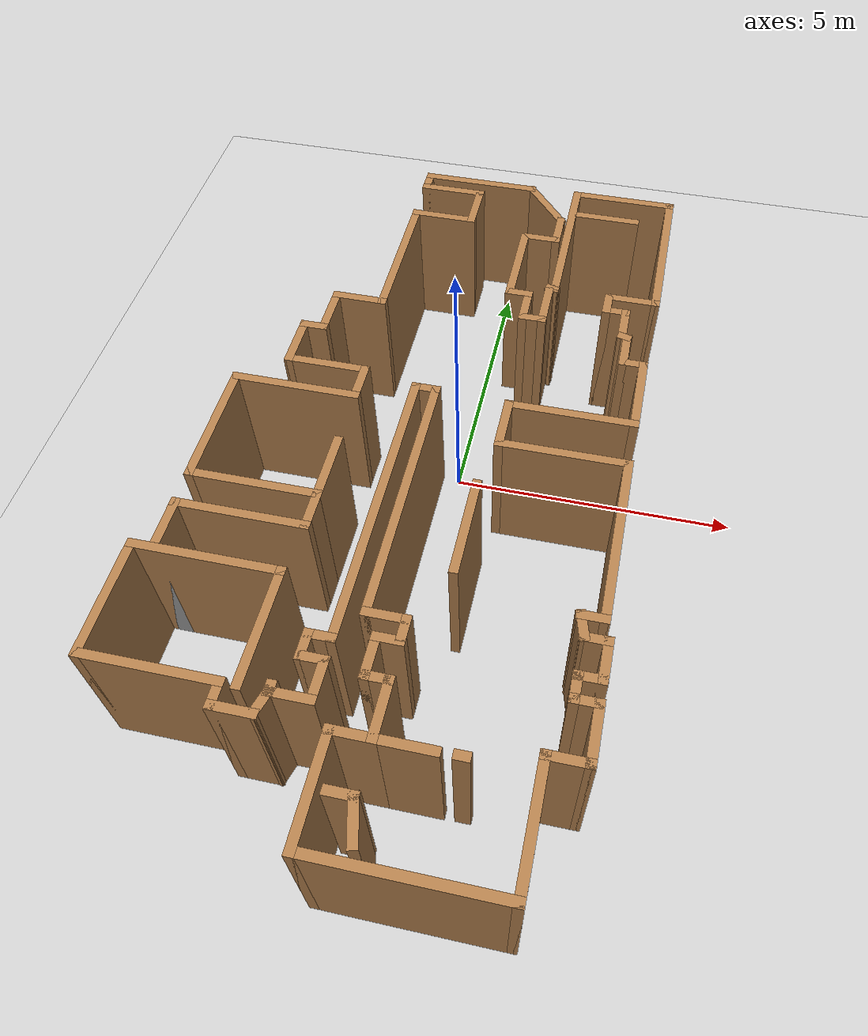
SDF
<sdf version="1.6">
 <world name="default">
  <model name="ground_plane">
   <static>1</static>
   <link name="link">
    <collision name="collision">
     <geometry><plane><normal>0 0 1</normal><size>100 100</size></plane></geometry>
     <surface>
      <contact><collide_bitmask>65535</collide_bitmask></contact>
      <friction><ode><mu>100</mu><mu2>50</mu2></ode></friction>
     </surface>
    </collision>
    <visual name="visual">
     <cast_shadows>0</cast_shadows>
     <geometry><plane><normal>0 0 1</normal><size>100 100</size></plane></geometry>
     <material>
      <script><uri>file://media/materials/scripts/gazebo.material</uri><name>Gazebo/Grey</name></script>
     </material>
    </visual>
   </link>
  </model>
  <model name="map_42">
   <pose>-0.527836 -1.00135 0 0 -0 0</pose>
   <link name="Wall_0">
    <collision name="Wall_0_Collision">
     <geometry><box><size>2.25 0.15 2.5</size></box></geometry>
     <pose>0 0 1.25 0 -0 0</pose>
    </collision>
    <visual name="Wall_0_Visual">
     <pose>0 0 1.25 0 -0 0</pose>
     <geometry><box><size>2.25 0.15 2.5</size></box></geometry>
     <material>
      <script><uri>file://media/materials/scripts/gazebo.material</uri><name>Gazebo/Wood</name></script>
      <ambient>1 1 1 1</ambient>
     </material>
     <meta><layer>0</layer></meta>
    </visual>
    <pose>-0.25 6.70969 0 0 -0 3.14159</pose>
   </link>
   <link name="Wall_1">
    <collision name="Wall_1_Collision">
     <geometry><box><size>0.5 0.15 2.5</size></box></geometry>
     <pose>0 0 1.25 0 -0 0</pose>
    </collision>
    <visual name="Wall_1_Visual">
     <pose>0 0 1.25 0 -0 0</pose>
     <geometry><box><size>0.5 0.15 2.5</size></box></geometry>
     <material>
      <script><uri>file://media/materials/scripts/gazebo.material</uri><name>Gazebo/Wood</name></script>
      <ambient>1 1 1 1</ambient>
     </material>
     <meta><layer>0</layer></meta>
    </visual>
    <pose>-1.3 6.53469 0 0 -0 -1.5708</pose>
   </link>
   <link name="Wall_10">
    <collision name="Wall_10_Collision">
     <geometry><box><size>0.5 0.15 2.5</size></box></geometry>
     <pose>0 0 1.25 0 -0 0</pose>
    </collision>
    <visual name="Wall_10_Visual">
     <pose>0 0 1.25 0 -0 0</pose>
     <geometry><box><size>0.5 0.15 2.5</size></box></geometry>
     <material>
      <script><uri>file://media/materials/scripts/gazebo.material</uri><name>Gazebo/Wood</name></script>
      <ambient>1 1 1 1</ambient>
     </material>
     <meta><layer>0</layer></meta>
    </visual>
    <pose>-2.325 2.05969 0 0 -0 3.14159</pose>
   </link>
   <link name="Wall_100">
    <collision name="Wall_100_Collision">
     <geometry><box><size>0.75 0.15 2.5</size></box></geometry>
     <pose>0 0 1.25 0 -0 0</pose>
    </collision>
    <visual name="Wall_100_Visual">
     <pose>0 0 1.25 0 -0 0</pose>
     <geometry><box><size>0.75 0.15 2.5</size></box></geometry>
     <material>
      <script><uri>file://media/materials/scripts/gazebo.material</uri><name>Gazebo/Wood</name></script>
      <ambient>1 1 1 1</ambient>
     </material>
     <meta><layer>0</layer></meta>
    </visual>
    <pose>1.26623 3.34952 0 0 -0 1.5708</pose>
   </link>
   <link name="Wall_101">
    <collision name="Wall_101_Collision">
     <geometry><box><size>0.5 0.15 2.5</size></box></geometry>
     <pose>0 0 1.25 0 -0 0</pose>
    </collision>
    <visual name="Wall_101_Visual">
     <pose>0 0 1.25 0 -0 0</pose>
     <geometry><box><size>0.5 0.15 2.5</size></box></geometry>
     <material>
      <script><uri>file://media/materials/scripts/gazebo.material</uri><name>Gazebo/Wood</name></script>
      <ambient>1 1 1 1</ambient>
     </material>
     <meta><layer>0</layer></meta>
    </visual>
    <pose>1.09123 3.64952 0 0 -0 3.14159</pose>
   </link>
   <link name="Wall_102">
    <collision name="Wall_102_Collision">
     <geometry><box><size>1.75 0.15 2.5</size></box></geometry>
     <pose>0 0 1.25 0 -0 0</pose>
    </collision>
    <visual name="Wall_102_Visual">
     <pose>0 0 1.25 0 -0 0</pose>
     <geometry><box><size>1.75 0.15 2.5</size></box></geometry>
     <material>
      <script><uri>file://media/materials/scripts/gazebo.material</uri><name>Gazebo/Wood</name></script>
      <ambient>1 1 1 1</ambient>
     </material>
     <meta><layer>0</layer></meta>
    </visual>
    <pose>0.916228 4.44953 0 0 -0 1.5708</pose>
   </link>
   <link name="Wall_105">
    <collision name="Wall_105_Collision">
     <geometry><box><size>0.75 0.15 2.5</size></box></geometry>
     <pose>0 0 1.25 0 -0 0</pose>
    </collision>
    <visual name="Wall_105_Visual">
     <pose>0 0 1.25 0 -0 0</pose>
     <geometry><box><size>0.75 0.15 2.5</size></box></geometry>
     <material>
      <script><uri>file://media/materials/scripts/gazebo.material</uri><name>Gazebo/Wood</name></script>
      <ambient>1 1 1 1</ambient>
     </material>
     <meta><layer>0</layer></meta>
    </visual>
    <pose>1.21623 5.24953 0 0 -0 0</pose>
   </link>
   <link name="Wall_106">
    <collision name="Wall_106_Collision">
     <geometry><box><size>0.75 0.15 2.5</size></box></geometry>
     <pose>0 0 1.25 0 -0 0</pose>
    </collision>
    <visual name="Wall_106_Visual">
     <pose>0 0 1.25 0 -0 0</pose>
     <geometry><box><size>0.75 0.15 2.5</size></box></geometry>
     <material>
      <script><uri>file://media/materials/scripts/gazebo.material</uri><name>Gazebo/Wood</name></script>
      <ambient>1 1 1 1</ambient>
     </material>
     <meta><layer>0</layer></meta>
    </visual>
    <pose>1.51623 5.54953 0 0 -0 1.5708</pose>
   </link>
   <link name="Wall_107">
    <collision name="Wall_107_Collision">
     <geometry><box><size>1.26931 0.15 2.5</size></box></geometry>
     <pose>0 0 1.25 0 -0 0</pose>
    </collision>
    <visual name="Wall_107_Visual">
     <pose>0 0 1.25 0 -0 0</pose>
     <geometry><box><size>1.26931 0.15 2.5</size></box></geometry>
     <material>
      <script><uri>file://media/materials/scripts/gazebo.material</uri><name>Gazebo/Wood</name></script>
      <ambient>1 1 1 1</ambient>
     </material>
     <meta><layer>0</layer></meta>
    </visual>
    <pose>1.15811 6.27961 0 0 -0 2.26514</pose>
   </link>
   <link name="Wall_109">
    <collision name="Wall_109_Collision">
     <geometry><box><size>1.25 0.15 2.5</size></box></geometry>
     <pose>0 0 1.25 0 -0 0</pose>
    </collision>
    <visual name="Wall_109_Visual">
     <pose>0 0 1.25 0 -0 0</pose>
     <geometry><box><size>1.25 0.15 2.5</size></box></geometry>
     <material>
      <script><uri>file://media/materials/scripts/gazebo.material</uri><name>Gazebo/Wood</name></script>
      <ambient>1 1 1 1</ambient>
     </material>
     <meta><layer>0</layer></meta>
    </visual>
    <pose>2.39007 6.09788 0 0 -0 0</pose>
   </link>
   <link name="Wall_11">
    <collision name="Wall_11_Collision">
     <geometry><box><size>1 0.15 2.5</size></box></geometry>
     <pose>0 0 1.25 0 -0 0</pose>
    </collision>
    <visual name="Wall_11_Visual">
     <pose>0 0 1.25 0 -0 0</pose>
     <geometry><box><size>1 0.15 2.5</size></box></geometry>
     <material>
      <script><uri>file://media/materials/scripts/gazebo.material</uri><name>Gazebo/Wood</name></script>
      <ambient>1 1 1 1</ambient>
     </material>
     <meta><layer>0</layer></meta>
    </visual>
    <pose>-2.5 1.63469 0 0 -0 -1.5708</pose>
   </link>
   <link name="Wall_111">
    <collision name="Wall_111_Collision">
     <geometry><box><size>1.75 0.15 2.5</size></box></geometry>
     <pose>0 0 1.25 0 -0 0</pose>
    </collision>
    <visual name="Wall_111_Visual">
     <pose>0 0 1.25 0 -0 0</pose>
     <geometry><box><size>1.75 0.15 2.5</size></box></geometry>
     <material>
      <script><uri>file://media/materials/scripts/gazebo.material</uri><name>Gazebo/Wood</name></script>
      <ambient>1 1 1 1</ambient>
     </material>
     <meta><layer>0</layer></meta>
    </visual>
    <pose>1.22826 -1.58492 0 0 -0 -1.5708</pose>
   </link>
   <link name="Wall_113">
    <collision name="Wall_113_Collision">
     <geometry><box><size>2.5 0.15 2.5</size></box></geometry>
     <pose>0 0 1.25 0 -0 0</pose>
    </collision>
    <visual name="Wall_113_Visual">
     <pose>0 0 1.25 0 -0 0</pose>
     <geometry><box><size>2.5 0.15 2.5</size></box></geometry>
     <material>
      <script><uri>file://media/materials/scripts/gazebo.material</uri><name>Gazebo/Wood</name></script>
      <ambient>1 1 1 1</ambient>
     </material>
     <meta><layer>0</layer></meta>
    </visual>
    <pose>-2.425 -2.94031 0 0 -0 0</pose>
   </link>
   <link name="Wall_114">
    <collision name="Wall_114_Collision">
     <geometry><box><size>2 0.15 2.5</size></box></geometry>
     <pose>0 0 1.25 0 -0 0</pose>
    </collision>
    <visual name="Wall_114_Visual">
     <pose>0 0 1.25 0 -0 0</pose>
     <geometry><box><size>2 0.15 2.5</size></box></geometry>
     <material>
      <script><uri>file://media/materials/scripts/gazebo.material</uri><name>Gazebo/Wood</name></script>
      <ambient>1 1 1 1</ambient>
     </material>
     <meta><layer>0</layer></meta>
    </visual>
    <pose>-1.25 -3.86531 0 0 -0 -1.5708</pose>
   </link>
   <link name="Wall_116">
    <collision name="Wall_116_Collision">
     <geometry><box><size>0.25 0.15 2.5</size></box></geometry>
     <pose>0 0 1.25 0 -0 0</pose>
    </collision>
    <visual name="Wall_116_Visual">
     <pose>0 0 1.25 0 -0 0</pose>
     <geometry><box><size>0.25 0.15 2.5</size></box></geometry>
     <material>
      <script><uri>file://media/materials/scripts/gazebo.material</uri><name>Gazebo/Wood</name></script>
      <ambient>1 1 1 1</ambient>
     </material>
     <meta><layer>0</layer></meta>
    </visual>
    <pose>1.95125 -5.12873 0 0 -0 0</pose>
   </link>
   <link name="Wall_118">
    <collision name="Wall_118_Collision">
     <geometry><box><size>0.5 0.15 2.5</size></box></geometry>
     <pose>0 0 1.25 0 -0 0</pose>
    </collision>
    <visual name="Wall_118_Visual">
     <pose>0 0 1.25 0 -0 0</pose>
     <geometry><box><size>0.5 0.15 2.5</size></box></geometry>
     <material>
      <script><uri>file://media/materials/scripts/gazebo.material</uri><name>Gazebo/Wood</name></script>
      <ambient>1 1 1 1</ambient>
     </material>
     <meta><layer>0</layer></meta>
    </visual>
    <pose>0.546737 -5.92408 0 0 -0 0</pose>
   </link>
   <link name="Wall_119">
    <collision name="Wall_119_Collision">
     <geometry><box><size>0.75 0.15 2.5</size></box></geometry>
     <pose>0 0 1.25 0 -0 0</pose>
    </collision>
    <visual name="Wall_119_Visual">
     <pose>0 0 1.25 0 -0 0</pose>
     <geometry><box><size>0.75 0.15 2.5</size></box></geometry>
     <material>
      <script><uri>file://media/materials/scripts/gazebo.material</uri><name>Gazebo/Wood</name></script>
      <ambient>1 1 1 1</ambient>
     </material>
     <meta><layer>0</layer></meta>
    </visual>
    <pose>0.799383 -6.21386 0 0 -0 -1.309</pose>
   </link>
   <link name="Wall_14">
    <collision name="Wall_14_Collision">
     <geometry><box><size>1.5 0.15 2.5</size></box></geometry>
     <pose>0 0 1.25 0 -0 0</pose>
    </collision>
    <visual name="Wall_14_Visual">
     <pose>0 0 1.25 0 -0 0</pose>
     <geometry><box><size>1.5 0.15 2.5</size></box></geometry>
     <material>
      <script><uri>file://media/materials/scripts/gazebo.material</uri><name>Gazebo/Wood</name></script>
      <ambient>1 1 1 1</ambient>
     </material>
     <meta><layer>0</layer></meta>
    </visual>
    <pose>-1.825 1.20969 0 0 -0 0</pose>
   </link>
   <link name="Wall_15">
    <collision name="Wall_15_Collision">
     <geometry><box><size>0.75 0.15 2.5</size></box></geometry>
     <pose>0 0 1.25 0 -0 0</pose>
    </collision>
    <visual name="Wall_15_Visual">
     <pose>0 0 1.25 0 -0 0</pose>
     <geometry><box><size>0.75 0.15 2.5</size></box></geometry>
     <material>
      <script><uri>file://media/materials/scripts/gazebo.material</uri><name>Gazebo/Wood</name></script>
      <ambient>1 1 1 1</ambient>
     </material>
     <meta><layer>0</layer></meta>
    </visual>
    <pose>-1.15 0.909687 0 0 -0 -1.5708</pose>
   </link>
   <link name="Wall_16">
    <collision name="Wall_16_Collision">
     <geometry><box><size>2.25 0.15 2.5</size></box></geometry>
     <pose>0 0 1.25 0 -0 0</pose>
    </collision>
    <visual name="Wall_16_Visual">
     <pose>0 0 1.25 0 -0 0</pose>
     <geometry><box><size>2.25 0.15 2.5</size></box></geometry>
     <material>
      <script><uri>file://media/materials/scripts/gazebo.material</uri><name>Gazebo/Wood</name></script>
      <ambient>1 1 1 1</ambient>
     </material>
     <meta><layer>0</layer></meta>
    </visual>
    <pose>-2.2 0.609687 0 0 -0 3.14159</pose>
   </link>
   <link name="Wall_17">
    <collision name="Wall_17_Collision">
     <geometry><box><size>2.25 0.15 2.5</size></box></geometry>
     <pose>0 0 1.25 0 -0 0</pose>
    </collision>
    <visual name="Wall_17_Visual">
     <pose>0 0 1.25 0 -0 0</pose>
     <geometry><box><size>2.25 0.15 2.5</size></box></geometry>
     <material>
      <script><uri>file://media/materials/scripts/gazebo.material</uri><name>Gazebo/Wood</name></script>
      <ambient>1 1 1 1</ambient>
     </material>
     <meta><layer>0</layer></meta>
    </visual>
    <pose>-3.25 -0.440313 0 0 -0 -1.5708</pose>
   </link>
   <link name="Wall_18">
    <collision name="Wall_18_Collision">
     <geometry><box><size>2.25 0.15 2.5</size></box></geometry>
     <pose>0 0 1.25 0 -0 0</pose>
    </collision>
    <visual name="Wall_18_Visual">
     <pose>0 0 1.25 0 -0 0</pose>
     <geometry><box><size>2.25 0.15 2.5</size></box></geometry>
     <material>
      <script><uri>file://media/materials/scripts/gazebo.material</uri><name>Gazebo/Wood</name></script>
      <ambient>1 1 1 1</ambient>
     </material>
     <meta><layer>0</layer></meta>
    </visual>
    <pose>-2.2 -1.49031 0 0 -0 0</pose>
   </link>
   <link name="Wall_19">
    <collision name="Wall_19_Collision">
     <geometry><box><size>1.25 0.15 2.5</size></box></geometry>
     <pose>0 0 1.25 0 -0 0</pose>
    </collision>
    <visual name="Wall_19_Visual">
     <pose>0 0 1.25 0 -0 0</pose>
     <geometry><box><size>1.25 0.15 2.5</size></box></geometry>
     <material>
      <script><uri>file://media/materials/scripts/gazebo.material</uri><name>Gazebo/Wood</name></script>
      <ambient>1 1 1 1</ambient>
     </material>
     <meta><layer>0</layer></meta>
    </visual>
    <pose>-1.15 -0.940313 0 0 -0 1.5708</pose>
   </link>
   <link name="Wall_21">
    <collision name="Wall_21_Collision">
     <geometry><box><size>0.75 0.15 2.5</size></box></geometry>
     <pose>0 0 1.25 0 -0 0</pose>
    </collision>
    <visual name="Wall_21_Visual">
     <pose>0 0 1.25 0 -0 0</pose>
     <geometry><box><size>0.75 0.15 2.5</size></box></geometry>
     <material>
      <script><uri>file://media/materials/scripts/gazebo.material</uri><name>Gazebo/Wood</name></script>
      <ambient>1 1 1 1</ambient>
     </material>
     <meta><layer>0</layer></meta>
    </visual>
    <pose>-1.15 -1.79031 0 0 -0 -1.5708</pose>
   </link>
   <link name="Wall_22">
    <collision name="Wall_22_Collision">
     <geometry><box><size>2.25 0.15 2.5</size></box></geometry>
     <pose>0 0 1.25 0 -0 0</pose>
    </collision>
    <visual name="Wall_22_Visual">
     <pose>0 0 1.25 0 -0 0</pose>
     <geometry><box><size>2.25 0.15 2.5</size></box></geometry>
     <material>
      <script><uri>file://media/materials/scripts/gazebo.material</uri><name>Gazebo/Wood</name></script>
      <ambient>1 1 1 1</ambient>
     </material>
     <meta><layer>0</layer></meta>
    </visual>
    <pose>-2.2 -2.09031 0 0 -0 3.14159</pose>
   </link>
   <link name="Wall_23">
    <collision name="Wall_23_Collision">
     <geometry><box><size>1 0.15 2.5</size></box></geometry>
     <pose>0 0 1.25 0 -0 0</pose>
    </collision>
    <visual name="Wall_23_Visual">
     <pose>0 0 1.25 0 -0 0</pose>
     <geometry><box><size>1 0.15 2.5</size></box></geometry>
     <material>
      <script><uri>file://media/materials/scripts/gazebo.material</uri><name>Gazebo/Wood</name></script>
      <ambient>1 1 1 1</ambient>
     </material>
     <meta><layer>0</layer></meta>
    </visual>
    <pose>-3.25 -2.51531 0 0 -0 -1.5708</pose>
   </link>
   <link name="Wall_33">
    <collision name="Wall_33_Collision">
     <geometry><box><size>0.25 0.15 2.5</size></box></geometry>
     <pose>0 0 1.25 0 -0 0</pose>
    </collision>
    <visual name="Wall_33_Visual">
     <pose>0 0 1.25 0 -0 0</pose>
     <geometry><box><size>0.25 0.15 2.5</size></box></geometry>
     <material>
      <script><uri>file://media/materials/scripts/gazebo.material</uri><name>Gazebo/Wood</name></script>
      <ambient>1 1 1 1</ambient>
     </material>
     <meta><layer>0</layer></meta>
    </visual>
    <pose>-0.8 -4.74031 0 0 -0 1.5708</pose>
   </link>
   <link name="Wall_35">
    <collision name="Wall_35_Collision">
     <geometry><box><size>0.5 0.15 2.5</size></box></geometry>
     <pose>0 0 1.25 0 -0 0</pose>
    </collision>
    <visual name="Wall_35_Visual">
     <pose>0 0 1.25 0 -0 0</pose>
     <geometry><box><size>0.5 0.15 2.5</size></box></geometry>
     <material>
      <script><uri>file://media/materials/scripts/gazebo.material</uri><name>Gazebo/Grey</name></script>
      <ambient>1 1 1 1</ambient>
     </material>
     <meta><layer>0</layer></meta>
    </visual>
    <pose>-3.425 -2.94031 0 0 -0 3.14159</pose>
   </link>
   <link name="Wall_36">
    <collision name="Wall_36_Collision">
     <geometry><box><size>2 0.15 2.5</size></box></geometry>
     <pose>0 0 1.25 0 -0 0</pose>
    </collision>
    <visual name="Wall_36_Visual">
     <pose>0 0 1.25 0 -0 0</pose>
     <geometry><box><size>2 0.15 2.5</size></box></geometry>
     <material>
      <script><uri>file://media/materials/scripts/gazebo.material</uri><name>Gazebo/Wood</name></script>
      <ambient>1 1 1 1</ambient>
     </material>
     <meta><layer>0</layer></meta>
    </visual>
    <pose>-3.6 -3.86531 0 0 -0 -1.5708</pose>
   </link>
   <link name="Wall_37">
    <collision name="Wall_37_Collision">
     <geometry><box><size>2.25 0.15 2.5</size></box></geometry>
     <pose>0 0 1.25 0 -0 0</pose>
    </collision>
    <visual name="Wall_37_Visual">
     <pose>0 0 1.25 0 -0 0</pose>
     <geometry><box><size>2.25 0.15 2.5</size></box></geometry>
     <material>
      <script><uri>file://media/materials/scripts/gazebo.material</uri><name>Gazebo/Wood</name></script>
      <ambient>1 1 1 1</ambient>
     </material>
     <meta><layer>0</layer></meta>
    </visual>
    <pose>-2.55 -4.79031 0 0 -0 0</pose>
   </link>
   <link name="Wall_38">
    <collision name="Wall_38_Collision">
     <geometry><box><size>0.5 0.15 2.5</size></box></geometry>
     <pose>0 0 1.25 0 -0 0</pose>
    </collision>
    <visual name="Wall_38_Visual">
     <pose>0 0 1.25 0 -0 0</pose>
     <geometry><box><size>0.5 0.15 2.5</size></box></geometry>
     <material>
      <script><uri>file://media/materials/scripts/gazebo.material</uri><name>Gazebo/Wood</name></script>
      <ambient>1 1 1 1</ambient>
     </material>
     <meta><layer>0</layer></meta>
    </visual>
    <pose>-1.5 -4.96531 0 0 -0 -1.5708</pose>
   </link>
   <link name="Wall_39">
    <collision name="Wall_39_Collision">
     <geometry><box><size>0.75 0.15 2.5</size></box></geometry>
     <pose>0 0 1.25 0 -0 0</pose>
    </collision>
    <visual name="Wall_39_Visual">
     <pose>0 0 1.25 0 -0 0</pose>
     <geometry><box><size>0.75 0.15 2.5</size></box></geometry>
     <material>
      <script><uri>file://media/materials/scripts/gazebo.material</uri><name>Gazebo/Wood</name></script>
      <ambient>1 1 1 1</ambient>
     </material>
     <meta><layer>0</layer></meta>
    </visual>
    <pose>-1.2 -5.14031 0 0 -0 0</pose>
   </link>
   <link name="Wall_4">
    <collision name="Wall_4_Collision">
     <geometry><box><size>1.25 0.15 2.5</size></box></geometry>
     <pose>0 0 1.25 0 -0 0</pose>
    </collision>
    <visual name="Wall_4_Visual">
     <pose>0 0 1.25 0 -0 0</pose>
     <geometry><box><size>1.25 0.15 2.5</size></box></geometry>
     <material>
      <script><uri>file://media/materials/scripts/gazebo.material</uri><name>Gazebo/Wood</name></script>
      <ambient>1 1 1 1</ambient>
     </material>
     <meta><layer>0</layer></meta>
    </visual>
    <pose>-0.75 6.35969 0 0 -0 0</pose>
   </link>
   <link name="Wall_42">
    <collision name="Wall_42_Collision">
     <geometry><box><size>0.514005 0.15 2.5</size></box></geometry>
     <pose>0 0 1.25 0 -0 0</pose>
    </collision>
    <visual name="Wall_42_Visual">
     <pose>0 0 1.25 0 -0 0</pose>
     <geometry><box><size>0.514005 0.15 2.5</size></box></geometry>
     <material>
      <script><uri>file://media/materials/scripts/gazebo.material</uri><name>Gazebo/Wood</name></script>
      <ambient>1 1 1 1</ambient>
     </material>
     <meta><layer>0</layer></meta>
    </visual>
    <pose>-0.85 -4.96531 0 0 -0 1.2925</pose>
   </link>
   <link name="Wall_43">
    <collision name="Wall_43_Collision">
     <geometry><box><size>0.75 0.15 2.5</size></box></geometry>
     <pose>0 0 1.25 0 -0 0</pose>
    </collision>
    <visual name="Wall_43_Visual">
     <pose>0 0 1.25 0 -0 0</pose>
     <geometry><box><size>0.75 0.15 2.5</size></box></geometry>
     <material>
      <script><uri>file://media/materials/scripts/gazebo.material</uri><name>Gazebo/Wood</name></script>
      <ambient>1 1 1 1</ambient>
     </material>
     <meta><layer>0</layer></meta>
    </visual>
    <pose>-0.5 -4.79031 0 0 -0 0</pose>
   </link>
   <link name="Wall_46">
    <collision name="Wall_46_Collision">
     <geometry><box><size>0.75 0.15 2.5</size></box></geometry>
     <pose>0 0 1.25 0 -0 0</pose>
    </collision>
    <visual name="Wall_46_Visual">
     <pose>0 0 1.25 0 -0 0</pose>
     <geometry><box><size>0.75 0.15 2.5</size></box></geometry>
     <material>
      <script><uri>file://media/materials/scripts/gazebo.material</uri><name>Gazebo/Wood</name></script>
      <ambient>1 1 1 1</ambient>
     </material>
     <meta><layer>0</layer></meta>
    </visual>
    <pose>-0.2 -4.49031 0 0 -0 1.5708</pose>
   </link>
   <link name="Wall_47">
    <collision name="Wall_47_Collision">
     <geometry><box><size>0.5 0.15 2.5</size></box></geometry>
     <pose>0 0 1.25 0 -0 0</pose>
    </collision>
    <visual name="Wall_47_Visual">
     <pose>0 0 1.25 0 -0 0</pose>
     <geometry><box><size>0.5 0.15 2.5</size></box></geometry>
     <material>
      <script><uri>file://media/materials/scripts/gazebo.material</uri><name>Gazebo/Wood</name></script>
      <ambient>1 1 1 1</ambient>
     </material>
     <meta><layer>0</layer></meta>
    </visual>
    <pose>-0.375 -4.19031 0 0 -0 3.14159</pose>
   </link>
   <link name="Wall_48">
    <collision name="Wall_48_Collision">
     <geometry><box><size>0.5 0.15 2.5</size></box></geometry>
     <pose>0 0 1.25 0 -0 0</pose>
    </collision>
    <visual name="Wall_48_Visual">
     <pose>0 0 1.25 0 -0 0</pose>
     <geometry><box><size>0.5 0.15 2.5</size></box></geometry>
     <material>
      <script><uri>file://media/materials/scripts/gazebo.material</uri><name>Gazebo/Wood</name></script>
      <ambient>1 1 1 1</ambient>
     </material>
     <meta><layer>0</layer></meta>
    </visual>
    <pose>-0.55 -4.01531 0 0 -0 1.5708</pose>
   </link>
   <link name="Wall_49">
    <collision name="Wall_49_Collision">
     <geometry><box><size>0.5 0.15 2.5</size></box></geometry>
     <pose>0 0 1.25 0 -0 0</pose>
    </collision>
    <visual name="Wall_49_Visual">
     <pose>0 0 1.25 0 -0 0</pose>
     <geometry><box><size>0.5 0.15 2.5</size></box></geometry>
     <material>
      <script><uri>file://media/materials/scripts/gazebo.material</uri><name>Gazebo/Wood</name></script>
      <ambient>1 1 1 1</ambient>
     </material>
     <meta><layer>0</layer></meta>
    </visual>
    <pose>-0.375 -3.84031 0 0 -0 0</pose>
   </link>
   <link name="Wall_5">
    <collision name="Wall_5_Collision">
     <geometry><box><size>1 0.15 2.5</size></box></geometry>
     <pose>0 0 1.25 0 -0 0</pose>
    </collision>
    <visual name="Wall_5_Visual">
     <pose>0 0 1.25 0 -0 0</pose>
     <geometry><box><size>1 0.15 2.5</size></box></geometry>
     <material>
      <script><uri>file://media/materials/scripts/gazebo.material</uri><name>Gazebo/Wood</name></script>
      <ambient>1 1 1 1</ambient>
     </material>
     <meta><layer>0</layer></meta>
    </visual>
    <pose>-0.2 5.93469 0 0 -0 -1.5708</pose>
   </link>
   <link name="Wall_50">
    <collision name="Wall_50_Collision">
     <geometry><box><size>5 0.15 2.5</size></box></geometry>
     <pose>0 0 1.25 0 -0 0</pose>
    </collision>
    <visual name="Wall_50_Visual">
     <pose>0 0 1.25 0 -0 0</pose>
     <geometry><box><size>5 0.15 2.5</size></box></geometry>
     <material>
      <script><uri>file://media/materials/scripts/gazebo.material</uri><name>Gazebo/Wood</name></script>
      <ambient>1 1 1 1</ambient>
     </material>
     <meta><layer>0</layer></meta>
    </visual>
    <pose>-0.2 -1.41531 0 0 -0 1.5708</pose>
   </link>
   <link name="Wall_51">
    <collision name="Wall_51_Collision">
     <geometry><box><size>0.5 0.15 2.5</size></box></geometry>
     <pose>0 0 1.25 0 -0 0</pose>
    </collision>
    <visual name="Wall_51_Visual">
     <pose>0 0 1.25 0 -0 0</pose>
     <geometry><box><size>0.5 0.15 2.5</size></box></geometry>
     <material>
      <script><uri>file://media/materials/scripts/gazebo.material</uri><name>Gazebo/Wood</name></script>
      <ambient>1 1 1 1</ambient>
     </material>
     <meta><layer>0</layer></meta>
    </visual>
    <pose>-0.025 1.00969 0 0 -0 0</pose>
   </link>
   <link name="Wall_52">
    <collision name="Wall_52_Collision">
     <geometry><box><size>4.5 0.15 2.5</size></box></geometry>
     <pose>0 0 1.25 0 -0 0</pose>
    </collision>
    <visual name="Wall_52_Visual">
     <pose>0 0 1.25 0 -0 0</pose>
     <geometry><box><size>4.5 0.15 2.5</size></box></geometry>
     <material>
      <script><uri>file://media/materials/scripts/gazebo.material</uri><name>Gazebo/Wood</name></script>
      <ambient>1 1 1 1</ambient>
     </material>
     <meta><layer>0</layer></meta>
    </visual>
    <pose>0.15 -1.16531 0 0 -0 -1.5708</pose>
   </link>
   <link name="Wall_53">
    <collision name="Wall_53_Collision">
     <geometry><box><size>0.75 0.15 2.5</size></box></geometry>
     <pose>0 0 1.25 0 -0 0</pose>
    </collision>
    <visual name="Wall_53_Visual">
     <pose>0 0 1.25 0 -0 0</pose>
     <geometry><box><size>0.75 0.15 2.5</size></box></geometry>
     <material>
      <script><uri>file://media/materials/scripts/gazebo.material</uri><name>Gazebo/Wood</name></script>
      <ambient>1 1 1 1</ambient>
     </material>
     <meta><layer>0</layer></meta>
    </visual>
    <pose>0.45 -3.34031 0 0 -0 0</pose>
   </link>
   <link name="Wall_54">
    <collision name="Wall_54_Collision">
     <geometry><box><size>0.5 0.15 2.5</size></box></geometry>
     <pose>0 0 1.25 0 -0 0</pose>
    </collision>
    <visual name="Wall_54_Visual">
     <pose>0 0 1.25 0 -0 0</pose>
     <geometry><box><size>0.5 0.15 2.5</size></box></geometry>
     <material>
      <script><uri>file://media/materials/scripts/gazebo.material</uri><name>Gazebo/Wood</name></script>
      <ambient>1 1 1 1</ambient>
     </material>
     <meta><layer>0</layer></meta>
    </visual>
    <pose>0.75 -3.51531 0 0 -0 -1.5708</pose>
   </link>
   <link name="Wall_55">
    <collision name="Wall_55_Collision">
     <geometry><box><size>0.5 0.15 2.5</size></box></geometry>
     <pose>0 0 1.25 0 -0 0</pose>
    </collision>
    <visual name="Wall_55_Visual">
     <pose>0 0 1.25 0 -0 0</pose>
     <geometry><box><size>0.5 0.15 2.5</size></box></geometry>
     <material>
      <script><uri>file://media/materials/scripts/gazebo.material</uri><name>Gazebo/Wood</name></script>
      <ambient>1 1 1 1</ambient>
     </material>
     <meta><layer>0</layer></meta>
    </visual>
    <pose>0.575 -3.69031 0 0 -0 3.14159</pose>
   </link>
   <link name="Wall_56">
    <collision name="Wall_56_Collision">
     <geometry><box><size>0.75 0.15 2.5</size></box></geometry>
     <pose>0 0 1.25 0 -0 0</pose>
    </collision>
    <visual name="Wall_56_Visual">
     <pose>0 0 1.25 0 -0 0</pose>
     <geometry><box><size>0.75 0.15 2.5</size></box></geometry>
     <material>
      <script><uri>file://media/materials/scripts/gazebo.material</uri><name>Gazebo/Wood</name></script>
      <ambient>1 1 1 1</ambient>
     </material>
     <meta><layer>0</layer></meta>
    </visual>
    <pose>0.4 -3.99031 0 0 -0 -1.5708</pose>
   </link>
   <link name="Wall_57">
    <collision name="Wall_57_Collision">
     <geometry><box><size>0.5 0.15 2.5</size></box></geometry>
     <pose>0 0 1.25 0 -0 0</pose>
    </collision>
    <visual name="Wall_57_Visual">
     <pose>0 0 1.25 0 -0 0</pose>
     <geometry><box><size>0.5 0.15 2.5</size></box></geometry>
     <material>
      <script><uri>file://media/materials/scripts/gazebo.material</uri><name>Gazebo/Wood</name></script>
      <ambient>1 1 1 1</ambient>
     </material>
     <meta><layer>0</layer></meta>
    </visual>
    <pose>0.575 -4.29031 0 0 -0 0</pose>
   </link>
   <link name="Wall_58">
    <collision name="Wall_58_Collision">
     <geometry><box><size>1 0.15 2.5</size></box></geometry>
     <pose>0 0 1.25 0 -0 0</pose>
    </collision>
    <visual name="Wall_58_Visual">
     <pose>0 0 1.25 0 -0 0</pose>
     <geometry><box><size>1 0.15 2.5</size></box></geometry>
     <material>
      <script><uri>file://media/materials/scripts/gazebo.material</uri><name>Gazebo/Wood</name></script>
      <ambient>1 1 1 1</ambient>
     </material>
     <meta><layer>0</layer></meta>
    </visual>
    <pose>0.75 -4.71531 0 0 -0 -1.5708</pose>
   </link>
   <link name="Wall_59">
    <collision name="Wall_59_Collision">
     <geometry><box><size>1 0.15 2.5</size></box></geometry>
     <pose>0 0 1.25 0 -0 0</pose>
    </collision>
    <visual name="Wall_59_Visual">
     <pose>0 0 1.25 0 -0 0</pose>
     <geometry><box><size>1 0.15 2.5</size></box></geometry>
     <material>
      <script><uri>file://media/materials/scripts/gazebo.material</uri><name>Gazebo/Wood</name></script>
      <ambient>1 1 1 1</ambient>
     </material>
     <meta><layer>0</layer></meta>
    </visual>
    <pose>1.175 -5.14031 0 0 -0 0</pose>
   </link>
   <link name="Wall_6">
    <collision name="Wall_6_Collision">
     <geometry><box><size>1.25 0.15 2.5</size></box></geometry>
     <pose>0 0 1.25 0 -0 0</pose>
    </collision>
    <visual name="Wall_6_Visual">
     <pose>0 0 1.25 0 -0 0</pose>
     <geometry><box><size>1.25 0.15 2.5</size></box></geometry>
     <material>
      <script><uri>file://media/materials/scripts/gazebo.material</uri><name>Gazebo/Wood</name></script>
      <ambient>1 1 1 1</ambient>
     </material>
     <meta><layer>0</layer></meta>
    </visual>
    <pose>-0.75 5.50969 0 0 -0 3.14159</pose>
   </link>
   <link name="Wall_61">
    <collision name="Wall_61_Collision">
     <geometry><box><size>0.75 0.15 2.5</size></box></geometry>
     <pose>0 0 1.25 0 -0 0</pose>
    </collision>
    <visual name="Wall_61_Visual">
     <pose>0 0 1.25 0 -0 0</pose>
     <geometry><box><size>0.75 0.15 2.5</size></box></geometry>
     <material>
      <script><uri>file://media/materials/scripts/gazebo.material</uri><name>Gazebo/Wood</name></script>
      <ambient>1 1 1 1</ambient>
     </material>
     <meta><layer>0</layer></meta>
    </visual>
    <pose>0.45 -5.14031 0 0 -0 3.14159</pose>
   </link>
   <link name="Wall_62">
    <collision name="Wall_62_Collision">
     <geometry><box><size>1.75 0.15 2.5</size></box></geometry>
     <pose>0 0 1.25 0 -0 0</pose>
    </collision>
    <visual name="Wall_62_Visual">
     <pose>0 0 1.25 0 -0 0</pose>
     <geometry><box><size>1.75 0.15 2.5</size></box></geometry>
     <material>
      <script><uri>file://media/materials/scripts/gazebo.material</uri><name>Gazebo/Wood</name></script>
      <ambient>1 1 1 1</ambient>
     </material>
     <meta><layer>0</layer></meta>
    </visual>
    <pose>0.15 -5.94031 0 0 -0 -1.5708</pose>
   </link>
   <link name="Wall_65">
    <collision name="Wall_65_Collision">
     <geometry><box><size>3 0.15 2.5</size></box></geometry>
     <pose>0 0 1.25 0 -0 0</pose>
    </collision>
    <visual name="Wall_65_Visual">
     <pose>0 0 1.25 0 -0 0</pose>
     <geometry><box><size>3 0.15 2.5</size></box></geometry>
     <material>
      <script><uri>file://media/materials/scripts/gazebo.material</uri><name>Gazebo/Wood</name></script>
      <ambient>1 1 1 1</ambient>
     </material>
     <meta><layer>0</layer></meta>
    </visual>
    <pose>1.575 -6.74031 0 0 -0 0</pose>
   </link>
   <link name="Wall_66">
    <collision name="Wall_66_Collision">
     <geometry><box><size>2 0.15 2.5</size></box></geometry>
     <pose>0 0 1.25 0 -0 0</pose>
    </collision>
    <visual name="Wall_66_Visual">
     <pose>0 0 1.25 0 -0 0</pose>
     <geometry><box><size>2 0.15 2.5</size></box></geometry>
     <material>
      <script><uri>file://media/materials/scripts/gazebo.material</uri><name>Gazebo/Wood</name></script>
      <ambient>1 1 1 1</ambient>
     </material>
     <meta><layer>0</layer></meta>
    </visual>
    <pose>3 -5.81531 0 0 -0 1.5708</pose>
   </link>
   <link name="Wall_69">
    <collision name="Wall_69_Collision">
     <geometry><box><size>0.75 0.15 2.5</size></box></geometry>
     <pose>0 0 1.25 0 -0 0</pose>
    </collision>
    <visual name="Wall_69_Visual">
     <pose>0 0 1.25 0 -0 0</pose>
     <geometry><box><size>0.75 0.15 2.5</size></box></geometry>
     <material>
      <script><uri>file://media/materials/scripts/gazebo.material</uri><name>Gazebo/Wood</name></script>
      <ambient>1 1 1 1</ambient>
     </material>
     <meta><layer>0</layer></meta>
    </visual>
    <pose>3.3 -4.89031 0 0 -0 0</pose>
   </link>
   <link name="Wall_7">
    <collision name="Wall_7_Collision">
     <geometry><box><size>2.75 0.15 2.5</size></box></geometry>
     <pose>0 0 1.25 0 -0 0</pose>
    </collision>
    <visual name="Wall_7_Visual">
     <pose>0 0 1.25 0 -0 0</pose>
     <geometry><box><size>2.75 0.15 2.5</size></box></geometry>
     <material>
      <script><uri>file://media/materials/scripts/gazebo.material</uri><name>Gazebo/Wood</name></script>
      <ambient>1 1 1 1</ambient>
     </material>
     <meta><layer>0</layer></meta>
    </visual>
    <pose>-1.3 4.20969 0 0 -0 -1.5708</pose>
   </link>
   <link name="Wall_70">
    <collision name="Wall_70_Collision">
     <geometry><box><size>1 0.15 2.5</size></box></geometry>
     <pose>0 0 1.25 0 -0 0</pose>
    </collision>
    <visual name="Wall_70_Visual">
     <pose>0 0 1.25 0 -0 0</pose>
     <geometry><box><size>1 0.15 2.5</size></box></geometry>
     <material>
      <script><uri>file://media/materials/scripts/gazebo.material</uri><name>Gazebo/Wood</name></script>
      <ambient>1 1 1 1</ambient>
     </material>
     <meta><layer>0</layer></meta>
    </visual>
    <pose>3.6 -4.46531 0 0 -0 1.5708</pose>
   </link>
   <link name="Wall_71">
    <collision name="Wall_71_Collision">
     <geometry><box><size>0.5 0.15 2.5</size></box></geometry>
     <pose>0 0 1.25 0 -0 0</pose>
    </collision>
    <visual name="Wall_71_Visual">
     <pose>0 0 1.25 0 -0 0</pose>
     <geometry><box><size>0.5 0.15 2.5</size></box></geometry>
     <material>
      <script><uri>file://media/materials/scripts/gazebo.material</uri><name>Gazebo/Wood</name></script>
      <ambient>1 1 1 1</ambient>
     </material>
     <meta><layer>0</layer></meta>
    </visual>
    <pose>3.425 -4.04031 0 0 -0 3.14159</pose>
   </link>
   <link name="Wall_72">
    <collision name="Wall_72_Collision">
     <geometry><box><size>0.5 0.15 2.5</size></box></geometry>
     <pose>0 0 1.25 0 -0 0</pose>
    </collision>
    <visual name="Wall_72_Visual">
     <pose>0 0 1.25 0 -0 0</pose>
     <geometry><box><size>0.5 0.15 2.5</size></box></geometry>
     <material>
      <script><uri>file://media/materials/scripts/gazebo.material</uri><name>Gazebo/Wood</name></script>
      <ambient>1 1 1 1</ambient>
     </material>
     <meta><layer>0</layer></meta>
    </visual>
    <pose>3.25 -3.86531 0 0 -0 1.5708</pose>
   </link>
   <link name="Wall_73">
    <collision name="Wall_73_Collision">
     <geometry><box><size>0.5 0.15 2.5</size></box></geometry>
     <pose>0 0 1.25 0 -0 0</pose>
    </collision>
    <visual name="Wall_73_Visual">
     <pose>0 0 1.25 0 -0 0</pose>
     <geometry><box><size>0.5 0.15 2.5</size></box></geometry>
     <material>
      <script><uri>file://media/materials/scripts/gazebo.material</uri><name>Gazebo/Wood</name></script>
      <ambient>1 1 1 1</ambient>
     </material>
     <meta><layer>0</layer></meta>
    </visual>
    <pose>3.425 -3.69031 0 0 -0 0</pose>
   </link>
   <link name="Wall_74">
    <collision name="Wall_74_Collision">
     <geometry><box><size>0.75 0.15 2.5</size></box></geometry>
     <pose>0 0 1.25 0 -0 0</pose>
    </collision>
    <visual name="Wall_74_Visual">
     <pose>0 0 1.25 0 -0 0</pose>
     <geometry><box><size>0.75 0.15 2.5</size></box></geometry>
     <material>
      <script><uri>file://media/materials/scripts/gazebo.material</uri><name>Gazebo/Wood</name></script>
      <ambient>1 1 1 1</ambient>
     </material>
     <meta><layer>0</layer></meta>
    </visual>
    <pose>3.6 -3.39031 0 0 -0 1.5708</pose>
   </link>
   <link name="Wall_75">
    <collision name="Wall_75_Collision">
     <geometry><box><size>0.5 0.15 2.5</size></box></geometry>
     <pose>0 0 1.25 0 -0 0</pose>
    </collision>
    <visual name="Wall_75_Visual">
     <pose>0 0 1.25 0 -0 0</pose>
     <geometry><box><size>0.5 0.15 2.5</size></box></geometry>
     <material>
      <script><uri>file://media/materials/scripts/gazebo.material</uri><name>Gazebo/Wood</name></script>
      <ambient>1 1 1 1</ambient>
     </material>
     <meta><layer>0</layer></meta>
    </visual>
    <pose>3.425 -3.09031 0 0 -0 3.14159</pose>
   </link>
   <link name="Wall_76">
    <collision name="Wall_76_Collision">
     <geometry><box><size>0.5 0.15 2.5</size></box></geometry>
     <pose>0 0 1.25 0 -0 0</pose>
    </collision>
    <visual name="Wall_76_Visual">
     <pose>0 0 1.25 0 -0 0</pose>
     <geometry><box><size>0.5 0.15 2.5</size></box></geometry>
     <material>
      <script><uri>file://media/materials/scripts/gazebo.material</uri><name>Gazebo/Wood</name></script>
      <ambient>1 1 1 1</ambient>
     </material>
     <meta><layer>0</layer></meta>
    </visual>
    <pose>3.20471 -2.92128 0 0 -0 1.8326</pose>
   </link>
   <link name="Wall_77">
    <collision name="Wall_77_Collision">
     <geometry><box><size>0.5 0.15 2.5</size></box></geometry>
     <pose>0 0 1.25 0 -0 0</pose>
    </collision>
    <visual name="Wall_77_Visual">
     <pose>0 0 1.25 0 -0 0</pose>
     <geometry><box><size>0.5 0.15 2.5</size></box></geometry>
     <material>
      <script><uri>file://media/materials/scripts/gazebo.material</uri><name>Gazebo/Wood</name></script>
      <ambient>1 1 1 1</ambient>
     </material>
     <meta><layer>0</layer></meta>
    </visual>
    <pose>3.33441 -2.75224 0 0 -0 0</pose>
   </link>
   <link name="Wall_78">
    <collision name="Wall_78_Collision">
     <geometry><box><size>3 0.15 2.5</size></box></geometry>
     <pose>0 0 1.25 0 -0 0</pose>
    </collision>
    <visual name="Wall_78_Visual">
     <pose>0 0 1.25 0 -0 0</pose>
     <geometry><box><size>3 0.15 2.5</size></box></geometry>
     <material>
      <script><uri>file://media/materials/scripts/gazebo.material</uri><name>Gazebo/Wood</name></script>
      <ambient>1 1 1 1</ambient>
     </material>
     <meta><layer>0</layer></meta>
    </visual>
    <pose>3.50941 -1.32724 0 0 -0 1.5708</pose>
   </link>
   <link name="Wall_79">
    <collision name="Wall_79_Collision">
     <geometry><box><size>2.25 0.15 2.5</size></box></geometry>
     <pose>0 0 1.25 0 -0 0</pose>
    </collision>
    <visual name="Wall_79_Visual">
     <pose>0 0 1.25 0 -0 0</pose>
     <geometry><box><size>2.25 0.15 2.5</size></box></geometry>
     <material>
      <script><uri>file://media/materials/scripts/gazebo.material</uri><name>Gazebo/Wood</name></script>
      <ambient>1 1 1 1</ambient>
     </material>
     <meta><layer>0</layer></meta>
    </visual>
    <pose>2.45941 0.097761 0 0 -0 3.14159</pose>
   </link>
   <link name="Wall_8">
    <collision name="Wall_8_Collision">
     <geometry><box><size>1 0.15 2.5</size></box></geometry>
     <pose>0 0 1.25 0 -0 0</pose>
    </collision>
    <visual name="Wall_8_Visual">
     <pose>0 0 1.25 0 -0 0</pose>
     <geometry><box><size>1 0.15 2.5</size></box></geometry>
     <material>
      <script><uri>file://media/materials/scripts/gazebo.material</uri><name>Gazebo/Wood</name></script>
      <ambient>1 1 1 1</ambient>
     </material>
     <meta><layer>0</layer></meta>
    </visual>
    <pose>-1.725 2.90969 0 0 -0 3.14159</pose>
   </link>
   <link name="Wall_80">
    <collision name="Wall_80_Collision">
     <geometry><box><size>1 0.15 2.5</size></box></geometry>
     <pose>0 0 1.25 0 -0 0</pose>
    </collision>
    <visual name="Wall_80_Visual">
     <pose>0 0 1.25 0 -0 0</pose>
     <geometry><box><size>1 0.15 2.5</size></box></geometry>
     <material>
      <script><uri>file://media/materials/scripts/gazebo.material</uri><name>Gazebo/Wood</name></script>
      <ambient>1 1 1 1</ambient>
     </material>
     <meta><layer>0</layer></meta>
    </visual>
    <pose>1.40941 0.522761 0 0 -0 1.5708</pose>
   </link>
   <link name="Wall_81">
    <collision name="Wall_81_Collision">
     <geometry><box><size>2.25 0.15 2.5</size></box></geometry>
     <pose>0 0 1.25 0 -0 0</pose>
    </collision>
    <visual name="Wall_81_Visual">
     <pose>0 0 1.25 0 -0 0</pose>
     <geometry><box><size>2.25 0.15 2.5</size></box></geometry>
     <material>
      <script><uri>file://media/materials/scripts/gazebo.material</uri><name>Gazebo/Wood</name></script>
      <ambient>1 1 1 1</ambient>
     </material>
     <meta><layer>0</layer></meta>
    </visual>
    <pose>2.45941 0.947761 0 0 -0 0</pose>
   </link>
   <link name="Wall_82">
    <collision name="Wall_82_Collision">
     <geometry><box><size>1.5 0.15 2.5</size></box></geometry>
     <pose>0 0 1.25 0 -0 0</pose>
    </collision>
    <visual name="Wall_82_Visual">
     <pose>0 0 1.25 0 -0 0</pose>
     <geometry><box><size>1.5 0.15 2.5</size></box></geometry>
     <material>
      <script><uri>file://media/materials/scripts/gazebo.material</uri><name>Gazebo/Wood</name></script>
      <ambient>1 1 1 1</ambient>
     </material>
     <meta><layer>0</layer></meta>
    </visual>
    <pose>3.50941 1.62276 0 0 -0 1.5708</pose>
   </link>
   <link name="Wall_83">
    <collision name="Wall_83_Collision">
     <geometry><box><size>0.5 0.15 2.5</size></box></geometry>
     <pose>0 0 1.25 0 -0 0</pose>
    </collision>
    <visual name="Wall_83_Visual">
     <pose>0 0 1.25 0 -0 0</pose>
     <geometry><box><size>0.5 0.15 2.5</size></box></geometry>
     <material>
      <script><uri>file://media/materials/scripts/gazebo.material</uri><name>Gazebo/Wood</name></script>
      <ambient>1 1 1 1</ambient>
     </material>
     <meta><layer>0</layer></meta>
    </visual>
    <pose>3.33441 2.29776 0 0 -0 3.14159</pose>
   </link>
   <link name="Wall_84">
    <collision name="Wall_84_Collision">
     <geometry><box><size>0.75 0.15 2.5</size></box></geometry>
     <pose>0 0 1.25 0 -0 0</pose>
    </collision>
    <visual name="Wall_84_Visual">
     <pose>0 0 1.25 0 -0 0</pose>
     <geometry><box><size>0.75 0.15 2.5</size></box></geometry>
     <material>
      <script><uri>file://media/materials/scripts/gazebo.material</uri><name>Gazebo/Wood</name></script>
      <ambient>1 1 1 1</ambient>
     </material>
     <meta><layer>0</layer></meta>
    </visual>
    <pose>3.15941 2.59776 0 0 -0 1.5708</pose>
   </link>
   <link name="Wall_85">
    <collision name="Wall_85_Collision">
     <geometry><box><size>0.25 0.15 2.5</size></box></geometry>
     <pose>0 0 1.25 0 -0 0</pose>
    </collision>
    <visual name="Wall_85_Visual">
     <pose>0 0 1.25 0 -0 0</pose>
     <geometry><box><size>0.25 0.15 2.5</size></box></geometry>
     <material>
      <script><uri>file://media/materials/scripts/gazebo.material</uri><name>Gazebo/Wood</name></script>
      <ambient>1 1 1 1</ambient>
     </material>
     <meta><layer>0</layer></meta>
    </visual>
    <pose>3.11112 2.9107 0 0 -0 2.87979</pose>
   </link>
   <link name="Wall_86">
    <collision name="Wall_86_Collision">
     <geometry><box><size>0.75 0.15 2.5</size></box></geometry>
     <pose>0 0 1.25 0 -0 0</pose>
    </collision>
    <visual name="Wall_86_Visual">
     <pose>0 0 1.25 0 -0 0</pose>
     <geometry><box><size>0.75 0.15 2.5</size></box></geometry>
     <material>
      <script><uri>file://media/materials/scripts/gazebo.material</uri><name>Gazebo/Wood</name></script>
      <ambient>1 1 1 1</ambient>
     </material>
     <meta><layer>0</layer></meta>
    </visual>
    <pose>3.06282 3.22364 0 0 -0 1.5708</pose>
   </link>
   <link name="Wall_89">
    <collision name="Wall_89_Collision">
     <geometry><box><size>0.5 0.15 2.5</size></box></geometry>
     <pose>0 0 1.25 0 -0 0</pose>
    </collision>
    <visual name="Wall_89_Visual">
     <pose>0 0 1.25 0 -0 0</pose>
     <geometry><box><size>0.5 0.15 2.5</size></box></geometry>
     <material>
      <script><uri>file://media/materials/scripts/gazebo.material</uri><name>Gazebo/Wood</name></script>
      <ambient>1 1 1 1</ambient>
     </material>
     <meta><layer>0</layer></meta>
    </visual>
    <pose>2.88782 3.52364 0 0 -0 3.14159</pose>
   </link>
   <link name="Wall_9">
    <collision name="Wall_9_Collision">
     <geometry><box><size>1 0.15 2.5</size></box></geometry>
     <pose>0 0 1.25 0 -0 0</pose>
    </collision>
    <visual name="Wall_9_Visual">
     <pose>0 0 1.25 0 -0 0</pose>
     <geometry><box><size>1 0.15 2.5</size></box></geometry>
     <material>
      <script><uri>file://media/materials/scripts/gazebo.material</uri><name>Gazebo/Wood</name></script>
      <ambient>1 1 1 1</ambient>
     </material>
     <meta><layer>0</layer></meta>
    </visual>
    <pose>-2.15 2.48469 0 0 -0 -1.5708</pose>
   </link>
   <link name="Wall_90">
    <collision name="Wall_90_Collision">
     <geometry><box><size>0.5 0.15 2.5</size></box></geometry>
     <pose>0 0 1.25 0 -0 0</pose>
    </collision>
    <visual name="Wall_90_Visual">
     <pose>0 0 1.25 0 -0 0</pose>
     <geometry><box><size>0.5 0.15 2.5</size></box></geometry>
     <material>
      <script><uri>file://media/materials/scripts/gazebo.material</uri><name>Gazebo/Wood</name></script>
      <ambient>1 1 1 1</ambient>
     </material>
     <meta><layer>0</layer></meta>
    </visual>
    <pose>2.71282 3.69864 0 0 -0 1.5708</pose>
   </link>
   <link name="Wall_91">
    <collision name="Wall_91_Collision">
     <geometry><box><size>1 0.15 2.5</size></box></geometry>
     <pose>0 0 1.25 0 -0 0</pose>
    </collision>
    <visual name="Wall_91_Visual">
     <pose>0 0 1.25 0 -0 0</pose>
     <geometry><box><size>1 0.15 2.5</size></box></geometry>
     <material>
      <script><uri>file://media/materials/scripts/gazebo.material</uri><name>Gazebo/Wood</name></script>
      <ambient>1 1 1 1</ambient>
     </material>
     <meta><layer>0</layer></meta>
    </visual>
    <pose>3.13782 3.87364 0 0 -0 0</pose>
   </link>
   <link name="Wall_92">
    <collision name="Wall_92_Collision">
     <geometry><box><size>3 0.15 2.5</size></box></geometry>
     <pose>0 0 1.25 0 -0 0</pose>
    </collision>
    <visual name="Wall_92_Visual">
     <pose>0 0 1.25 0 -0 0</pose>
     <geometry><box><size>3 0.15 2.5</size></box></geometry>
     <material>
      <script><uri>file://media/materials/scripts/gazebo.material</uri><name>Gazebo/Wood</name></script>
      <ambient>1 1 1 1</ambient>
     </material>
     <meta><layer>0</layer></meta>
    </visual>
    <pose>3.56282 5.29864 0 0 -0 1.5708</pose>
   </link>
   <link name="Wall_93">
    <collision name="Wall_93_Collision">
     <geometry><box><size>2 0.15 2.5</size></box></geometry>
     <pose>0 0 1.25 0 -0 0</pose>
    </collision>
    <visual name="Wall_93_Visual">
     <pose>0 0 1.25 0 -0 0</pose>
     <geometry><box><size>2 0.15 2.5</size></box></geometry>
     <material>
      <script><uri>file://media/materials/scripts/gazebo.material</uri><name>Gazebo/Wood</name></script>
      <ambient>1 1 1 1</ambient>
     </material>
     <meta><layer>0</layer></meta>
    </visual>
    <pose>2.63782 6.72364 0 0 -0 3.14159</pose>
   </link>
   <link name="Wall_94">
    <collision name="Wall_94_Collision">
     <geometry><box><size>3 0.15 2.5</size></box></geometry>
     <pose>0 0 1.25 0 -0 0</pose>
    </collision>
    <visual name="Wall_94_Visual">
     <pose>0 0 1.25 0 -0 0</pose>
     <geometry><box><size>3 0.15 2.5</size></box></geometry>
     <material>
      <script><uri>file://media/materials/scripts/gazebo.material</uri><name>Gazebo/Wood</name></script>
      <ambient>1 1 1 1</ambient>
     </material>
     <meta><layer>0</layer></meta>
    </visual>
    <pose>1.71282 5.29864 0 0 -0 -1.5708</pose>
   </link>
   <link name="Wall_97">
    <collision name="Wall_97_Collision">
     <geometry><box><size>0.25 0.15 2.5</size></box></geometry>
     <pose>0 0 1.25 0 -0 0</pose>
    </collision>
    <visual name="Wall_97_Visual">
     <pose>0 0 1.25 0 -0 0</pose>
     <geometry><box><size>0.25 0.15 2.5</size></box></geometry>
     <material>
      <script><uri>file://media/materials/scripts/gazebo.material</uri><name>Gazebo/Wood</name></script>
      <ambient>1 1 1 1</ambient>
     </material>
     <meta><layer>0</layer></meta>
    </visual>
    <pose>1.66452 3.88658 0 0 -0 2.87979</pose>
   </link>
   <link name="Wall_98">
    <collision name="Wall_98_Collision">
     <geometry><box><size>1 0.15 2.5</size></box></geometry>
     <pose>0 0 1.25 0 -0 0</pose>
    </collision>
    <visual name="Wall_98_Visual">
     <pose>0 0 1.25 0 -0 0</pose>
     <geometry><box><size>1 0.15 2.5</size></box></geometry>
     <material>
      <script><uri>file://media/materials/scripts/gazebo.material</uri><name>Gazebo/Wood</name></script>
      <ambient>1 1 1 1</ambient>
     </material>
     <meta><layer>0</layer></meta>
    </visual>
    <pose>1.61623 3.47452 0 0 -0 -1.5708</pose>
   </link>
   <link name="Wall_99">
    <collision name="Wall_99_Collision">
     <geometry><box><size>0.5 0.15 2.5</size></box></geometry>
     <pose>0 0 1.25 0 -0 0</pose>
    </collision>
    <visual name="Wall_99_Visual">
     <pose>0 0 1.25 0 -0 0</pose>
     <geometry><box><size>0.5 0.15 2.5</size></box></geometry>
     <material>
      <script><uri>file://media/materials/scripts/gazebo.material</uri><name>Gazebo/Wood</name></script>
      <ambient>1 1 1 1</ambient>
     </material>
     <meta><layer>0</layer></meta>
    </visual>
    <pose>1.44123 3.04953 0 0 -0 3.14159</pose>
   </link>
   <static>1</static>
  </model>
 </world>
</sdf>
